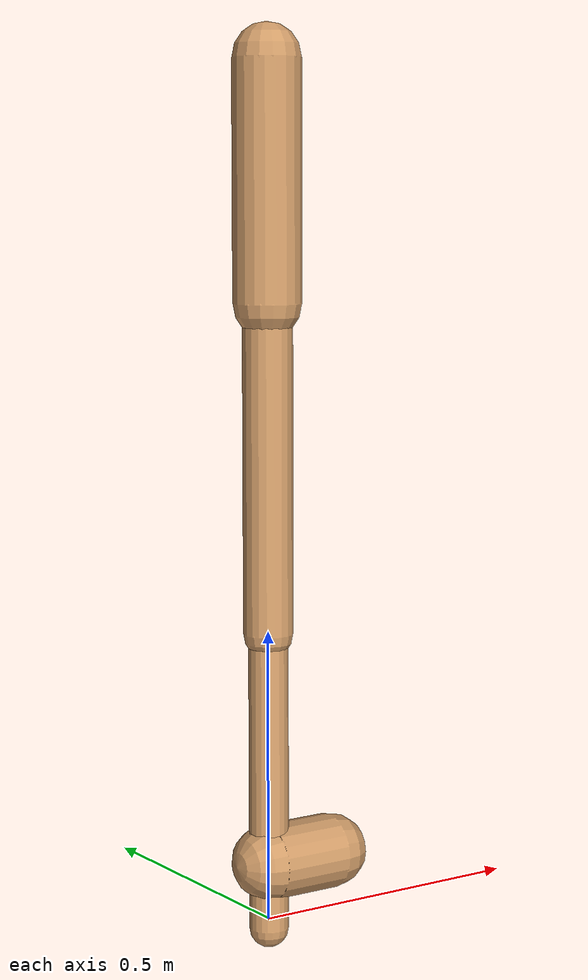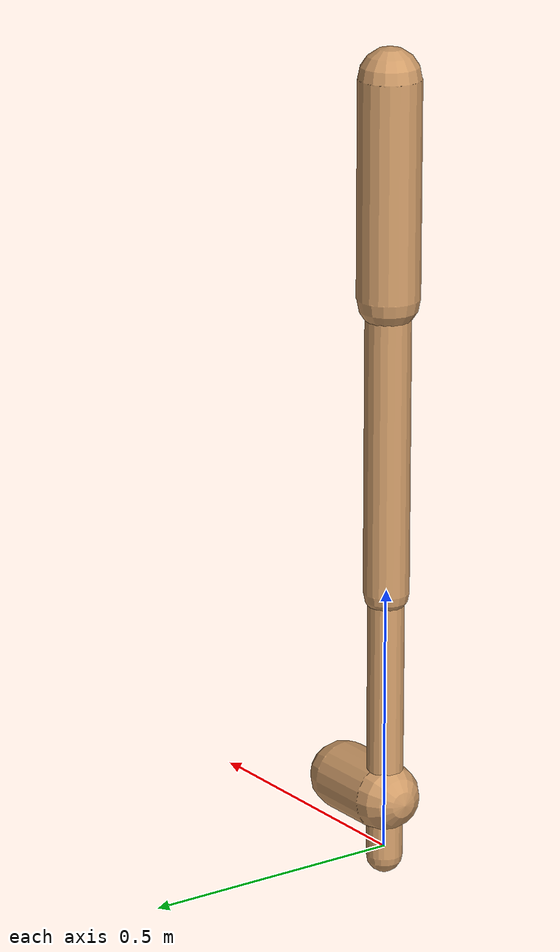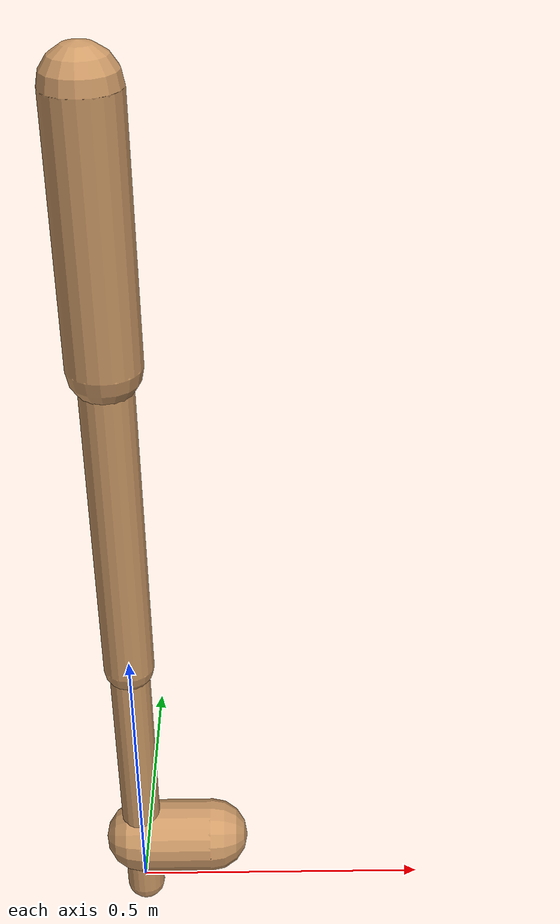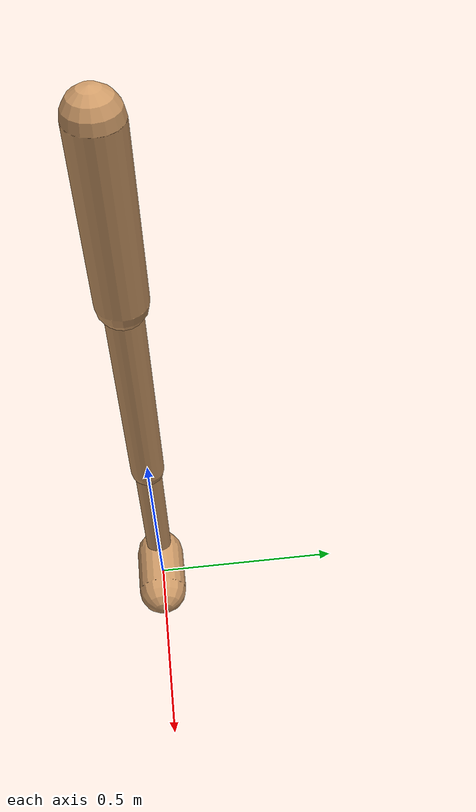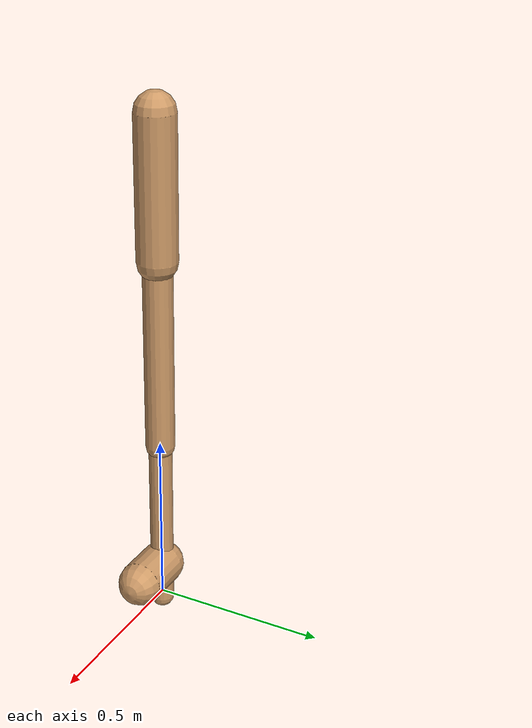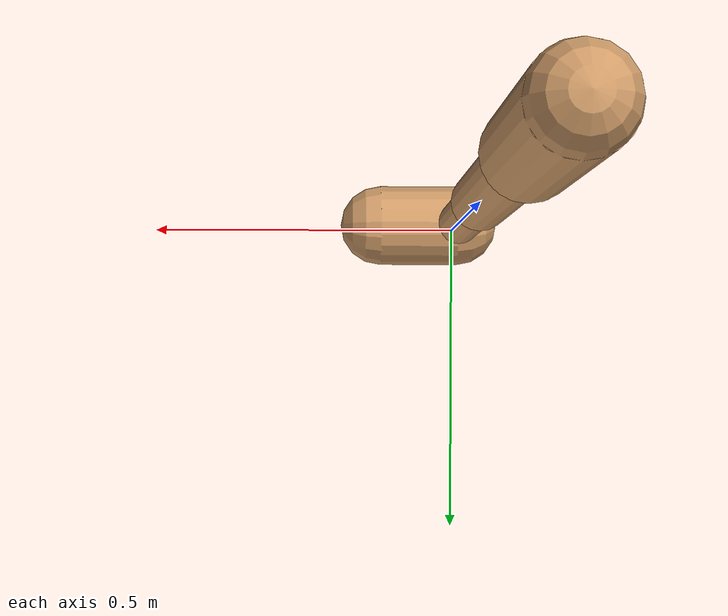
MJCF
<mujoco model="walker2d">
  <compiler angle="degree" coordinate="global" inertiafromgeom="true" />
  <default>
    <joint armature="0.01" damping=".1" limited="true" />
    <geom conaffinity="0" condim="3" contype="1" density="1000" friction="0.8 .1 .1" rgba="0.8 0.6 .4 1" />
  </default>
  <option integrator="RK4" timestep="0.002" />
  <worldbody>

    <body name="torso" pos="0 0 0.21875447140734947">
      <joint armature="0" axis="1 0 0" damping="0" limited="false" name="ignorex" pos="0 0 0" stiffness="0" type="slide" />
      <joint armature="0" axis="0 0 1" damping="0" limited="false" name="ignorez" pos="0 0 0" ref="1.25" stiffness="0" type="slide" />
      <joint armature="0" axis="0 1 0" damping="0" limited="false" name="ignorey" pos="0 0 0" stiffness="0" type="hinge" />
      <geom fromto="0 0 1.45 0 0 1.05" name="torso_geom" size="0.057661221389081745" type="capsule" />
      <body name="thigh">
        <joint axis="0 -1 0" name="thigh_joint" pos="0 0 1.05" range="-150 0" type="hinge" />
        <geom fromto="0.0 0.0 1.05 0.0 0.0 0.4963794609123081" name="thigh_geom" size="0.04204115218935509" type="capsule" />
        <body name="leg" pos="0.0 0.0 -0.10362053908769187">
          <joint axis="0 -1 0" name="leg_joint" pos="0 0 0.6" range="-150 0" type="hinge" />
          <geom fromto="0.0 0.0 0.6 0.0 0.0 -0.015133932319657595" name="leg_geom" size="0.03363292175148407" type="capsule" />
          <body name="foot" pos="0.0 0.0 -0.1151339323196576">
            <joint axis="0 -1 0" name="foot_joint" pos="0 0 0.1" range="-45 45" type="hinge" />
            <geom fromto="0.0 0.0 0.1 0.12518210042063563 0.0 0.1" name="foot_geom" size="0.06424847894374776" type="capsule" />
          </body>
        </body>
      </body>

      <body name="thigh_left">
        <joint axis="0 -1 0" name="thigh_left_joint" pos="0 0 1.05" range="-150 0" type="hinge" />
        <geom fromto="0.0 0.0 1.05 0.0 0.0 0.4963794609123081" name="thigh_left_geom" rgba=".7 .3 .6 1" size="0.04204115218935509" type="capsule" />
        <body name="leg_left" pos="0.0 0.0 -0.10362053908769187">
          <joint axis="0 -1 0" name="leg_left_joint" pos="0 0 0.6" range="-150 0" type="hinge" />
          <geom fromto="0.0 0.0 0.6 0.0 0.0 -0.015133932319657595" name="leg_left_geom" rgba=".7 .3 .6 1" size="0.03363292175148407" type="capsule" />
          <body name="foot_left" pos="0.0 0.0 -0.1151339323196576">
            <joint axis="0 -1 0" name="foot_left_joint" pos="0 0 0.1" range="-45 45" type="hinge" />
            <geom fromto="0.0 0.0 0.1 0.12518210042063563 0.0 0.1" name="foot_left_geom" rgba=".7 .3 .6 1" size="0.06424847894374776" type="capsule" />
          </body>
        </body>
      </body>
    </body>
  </worldbody>
  <actuator>

    <motor ctrllimited="true" ctrlrange="-1.0 1.0" gear="100" joint="thigh_joint" />
    <motor ctrllimited="true" ctrlrange="-1.0 1.0" gear="100" joint="leg_joint" />
    <motor ctrllimited="true" ctrlrange="-1.0 1.0" gear="100" joint="foot_joint" />
    <motor ctrllimited="true" ctrlrange="-1.0 1.0" gear="100" joint="thigh_left_joint" />
    <motor ctrllimited="true" ctrlrange="-1.0 1.0" gear="100" joint="leg_left_joint" />
    <motor ctrllimited="true" ctrlrange="-1.0 1.0" gear="100" joint="foot_left_joint" />

  </actuator>
</mujoco>
